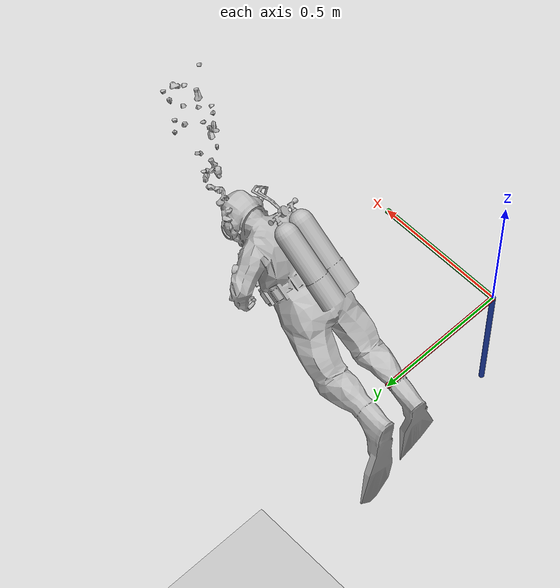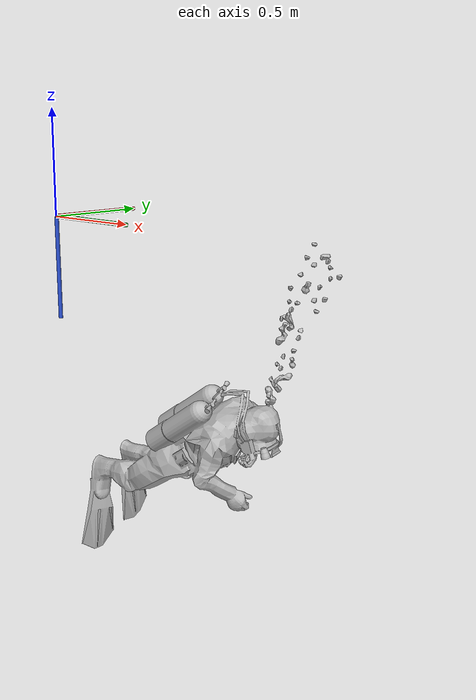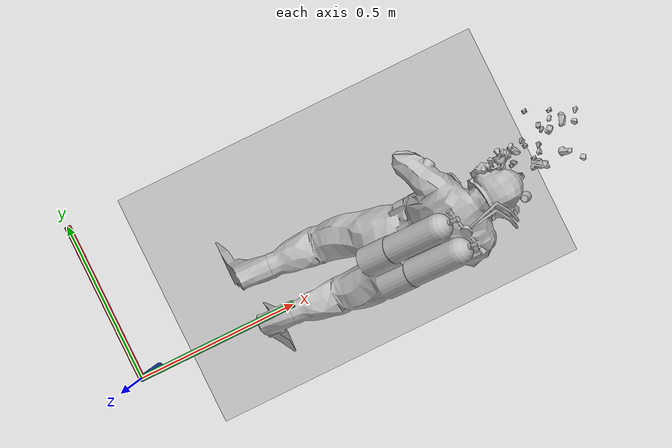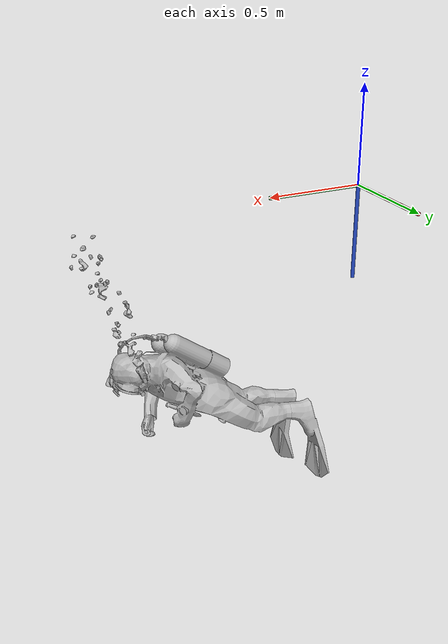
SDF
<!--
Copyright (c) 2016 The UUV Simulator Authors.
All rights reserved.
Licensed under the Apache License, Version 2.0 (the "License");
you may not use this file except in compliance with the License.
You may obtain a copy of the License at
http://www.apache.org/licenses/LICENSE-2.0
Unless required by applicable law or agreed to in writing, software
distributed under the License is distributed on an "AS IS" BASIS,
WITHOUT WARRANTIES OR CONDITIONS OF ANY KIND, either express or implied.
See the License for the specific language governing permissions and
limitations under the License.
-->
<sdf version="1.4">
 <world name="oceans_waves">
  <physics name="default_physics" default="true" type="ode">
   <max_step_size>0.002</max_step_size>
   <real_time_factor>1</real_time_factor>
   <real_time_update_rate>500</real_time_update_rate>
  </physics>
  <scene>
   <ambient>0.01 0.01 0.01 1.0</ambient>
   <sky><clouds><speed>12</speed></clouds></sky>
   <shadows>1</shadows>
  </scene>
  <spherical_coordinates>
   <latitude_deg>56.71897669633431</latitude_deg>
   <longitude_deg>3.515625</longitude_deg>
  </spherical_coordinates>
  <light type="directional" name="sun1">
   <pose>50 0 150 0 0 0</pose>
   <diffuse>1 1 1 1</diffuse>
   <specular>.1 .1 .1 1</specular>
   <direction>0.3 0.3 -1</direction>
   <cast_shadows>false</cast_shadows>
  </light>
  <light type="directional" name="sun_diffuse">
   <pose>-50 0 -150 0 0 0</pose>
   <diffuse>0.6 0.6 0.6 1</diffuse>
   <specular>0 0 0 1</specular>
   <direction>-0.3 -0.3 -1</direction>
   <cast_shadows>false</cast_shadows>
  </light>
  <include><uri>model://ned_frame</uri></include>
  <include><uri>model://diver</uri><pose>1 0 -1 0 0 0</pose></include>
  <include><uri>model://sea_bottom</uri><pose>0 0 -5 0 0 0</pose></include>
  <plugin name="underwater_current_plugin" filename="libuuv_underwater_current_ros_plugin.so">
   <namespace>hydrodynamics</namespace>
   <constant_current>
    <topic>current_velocity</topic>
    <velocity><mean>0</mean><min>0</min><max>5</max><mu>0.0</mu><noiseAmp>0.0</noiseAmp></velocity>
    <horizontal_angle>
     <mean>0</mean>
     <min>-3.141592653589793238</min>
     <max>3.141592653589793238</max>
     <mu>0.0</mu>
     <noiseAmp>0.0</noiseAmp>
    </horizontal_angle>
    <vertical_angle>
     <mean>0</mean>
     <min>-3.141592653589793238</min>
     <max>3.141592653589793238</max>
     <mu>0.0</mu>
     <noiseAmp>0.0</noiseAmp>
    </vertical_angle>
   </constant_current>
  </plugin>
  <plugin name="sc_interface" filename="libuuv_sc_ros_interface_plugin.so"/>
 </world>
</sdf>

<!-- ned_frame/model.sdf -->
<sdf version='1.5'>
    <model name="world_ned">

      <pose>0 0 0 0 0 0</pose>
      <static>true</static>

      <link name="world_ned">
        <gravity>0</gravity>
        <pose>0 0 0 3.14159265359 0 1.5707963267948966</pose>

        <visual name="N_visual">
          <pose>0.25 0 0 1.5707963267948966 0 1.5707963267948966</pose>
          <geometry>
            <cylinder>
              <radius>0.01</radius>
              <length>0.5</length>
            </cylinder>
          </geometry>
          <material>
            <script>
              <uri>file://media/materials/scripts/gazebo.material</uri>
              <name>Gazebo/Red</name>
            </script>
          </material>
        </visual>

        <visual name="E_visual">
          <pose>0 0.25 0 1.5707963267948966 0 0</pose>
          <geometry>
            <cylinder>
              <radius>0.01</radius>
              <length>0.5</length>
            </cylinder>
          </geometry>
          <material>
            <script>
              <uri>file://media/materials/scripts/gazebo.material</uri>
              <name>Gazebo/Green</name>
            </script>
          </material>
        </visual>

        <visual name="D_visual">
          <pose>0 0 0.25 0 0 0</pose>
          <geometry>
            <cylinder>
              <radius>0.01</radius>
              <length>0.5</length>
            </cylinder>
          </geometry>
          <material>
            <script>
              <uri>file://media/materials/scripts/gazebo.material</uri>
              <name>Gazebo/Blue</name>
            </script>
          </material>
        </visual>
      </link>
    </model>
</sdf>

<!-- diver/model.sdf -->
<sdf version="1.5">
  <model name="diver">
    <link name="link">
      <inertial>
      <pose>0 0 0.0175 0 0 0</pose>
        <mass>10</mass>
	  <inertia>
	    <ixx>0.000250308</ixx>
	    <ixy>0.0</ixy>
	    <ixz>0.0</ixz>
	    <iyy>0.000250308</iyy>
	    <iyz>0.0</iyz>
	    <izz>0.0004802</izz>
	  </inertia>
      </inertial>
      <collision name="collision">
        <pose>0 0 0.0175 0 0 0</pose>
        <geometry>
          <cylinder>
            <radius>0.098</radius>
            <length>0.035</length>
          </cylinder>
        </geometry>
      </collision>
      <visual name="visual">
	<pose> 0 0 0 0 0 1.57 </pose>
        <geometry>
          <mesh>
            <uri>model://diver/meshes/Diver.obj</uri>
            <scale> 0.001 0.001 0.001 </scale>
          </mesh>
        </geometry>
      </visual>
     <gravity>0.0</gravity>
    </link>
  </model>
</sdf>

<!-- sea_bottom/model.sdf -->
<sdf version="1.5">
  <model name="sea_bottom">
    <static>true</static>
    <link name="sea_bottom">
      <collision name="collision">
        <pose>0 0 0 0 0 0</pose>
        <geometry>
          <box>
            <size>2000 2000 .1</size>
          </box>
        </geometry>
      </collision>

      <visual name="visual">
        <cast_shadows>false</cast_shadows>
        <pose>0 0 0 0 0 0</pose>
        <geometry>
          <box>
            <size>2000 2000 .1</size>
          </box>
        </geometry>
        <material>
          <script>
            <uri>file://Media/materials/scripts/sand.material</uri>
            <name>UUVSimulator/SandAndStones</name>
          </script>
          <emissive>
            0.2 0.2 0.2 1.0
          </emissive>
        </material>
      </visual>
    </link>
  </model>
</sdf>
